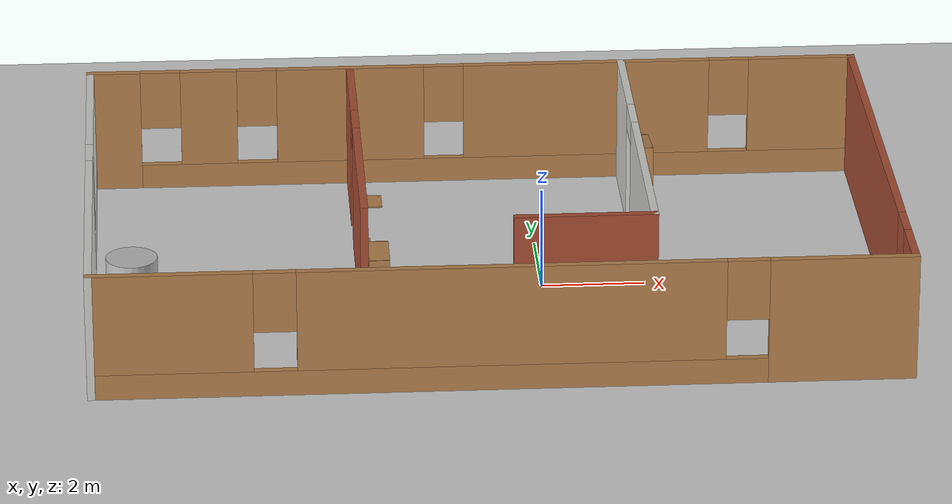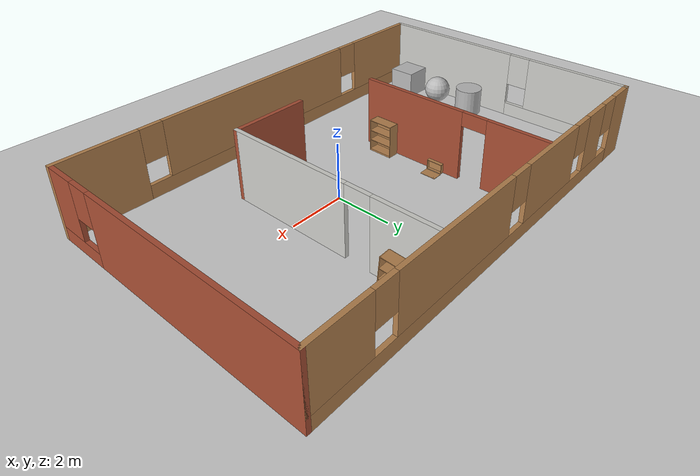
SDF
<sdf version="1.6">
 <world name="default">
  <light name="sun" type="directional">
   <pose>0 0 10 0 -0 0</pose>
   <diffuse>0.8 0.8 0.8 1</diffuse>
   <specular>0.1 0.1 0.1 1</specular>
   <attenuation>
    <range>1000</range>
    <constant>0.9</constant>
    <linear>0.01</linear>
    <quadratic>0.001</quadratic>
   </attenuation>
   <direction>-0.5 0.5 -1</direction>
  </light>
  <model name="ground_plane">
   <static>1</static>
   <link name="link">
    <collision name="collision">
     <geometry><plane><normal>0 0 1</normal><size>100 100</size></plane></geometry>
     <surface><friction><ode><mu>100</mu><mu2>50</mu2></ode></friction></surface>
    </collision>
    <visual name="visual">
     <cast_shadows>0</cast_shadows>
     <geometry><plane><normal>0 0 1</normal><size>100 100</size></plane></geometry>
     <material>
      <script><uri>file://media/materials/scripts/gazebo.material</uri><name>Gazebo/Grey</name></script>
     </material>
    </visual>
   </link>
  </model>
  <gravity>0 0 -9.8</gravity>
  <magnetic_field>6e-06 2.3e-05 -4.2e-05</magnetic_field>
  <atmosphere type="adiabatic"/>
  <physics name="default_physics" default="0" type="ode">
   <max_step_size>0.001</max_step_size>
   <real_time_factor>1</real_time_factor>
   <real_time_update_rate>1000</real_time_update_rate>
  </physics>
  <scene><ambient>0.4 0.4 0.4 1</ambient><background>0.7 0.7 0.7 1</background><shadows>1</shadows></scene>
  <spherical_coordinates>
   <surface_model>EARTH_WGS84</surface_model>
   <latitude_deg>0</latitude_deg>
   <longitude_deg>0</longitude_deg>
   <elevation>0</elevation>
   <heading_deg>0</heading_deg>
  </spherical_coordinates>
  <model name="Building5">
   <pose>-1.04167 0.393768 0 0 -0 0</pose>
   <link name="Wall_0">
    <pose>-7.675 0 0 0 -0 1.5708</pose>
    <visual name="Wall_0_Visual_0">
     <pose>-2.26473 0 1.25 0 -0 0</pose>
     <geometry><box><size>5.47055 0.15 2.5</size></box></geometry>
     <material>
      <script><uri>file://media/materials/scripts/gazebo.material</uri><name>Gazebo/CeilingTiled</name></script>
      <ambient>1 1 1 1</ambient>
     </material>
    </visual>
    <collision name="Wall_0_Collision_0">
     <geometry><box><size>5.47055 0.15 2.5</size></box></geometry>
     <pose>-2.26473 0 1.25 0 -0 0</pose>
    </collision>
    <visual name="Wall_0_Visual_1">
     <pose>2.73527 0 0.25 0 -0 0</pose>
     <geometry><box><size>4.52945 0.15 0.5</size></box></geometry>
     <material>
      <script><uri>file://media/materials/scripts/gazebo.material</uri><name>Gazebo/CeilingTiled</name></script>
      <ambient>1 1 1 1</ambient>
     </material>
    </visual>
    <collision name="Wall_0_Collision_1">
     <geometry><box><size>4.52945 0.15 0.5</size></box></geometry>
     <pose>2.73527 0 0.25 0 -0 0</pose>
    </collision>
    <visual name="Wall_0_Visual_2">
     <pose>3.13527 0 1.5 0 -0 0</pose>
     <geometry><box><size>3.72945 0.15 2</size></box></geometry>
     <material>
      <script><uri>file://media/materials/scripts/gazebo.material</uri><name>Gazebo/CeilingTiled</name></script>
      <ambient>1 1 1 1</ambient>
     </material>
    </visual>
    <collision name="Wall_0_Collision_2">
     <geometry><box><size>3.72945 0.15 2</size></box></geometry>
     <pose>3.13527 0 1.5 0 -0 0</pose>
    </collision>
    <visual name="Wall_0_Visual_3">
     <pose>0.870547 0 1.9 0 -0 0</pose>
     <geometry><box><size>0.8 0.15 1.2</size></box></geometry>
     <material>
      <script><uri>file://media/materials/scripts/gazebo.material</uri><name>Gazebo/CeilingTiled</name></script>
      <ambient>1 1 1 1</ambient>
     </material>
    </visual>
    <collision name="Wall_0_Collision_3">
     <geometry><box><size>0.8 0.15 1.2</size></box></geometry>
     <pose>0.870547 0 1.9 0 -0 0</pose>
    </collision>
   </link>
   <link name="Wall_1">
    <pose>0 4.925 0 0 -0 0</pose>
    <visual name="Wall_1_Visual_0">
     <pose>-7.21431 0 1.25 0 -0 0</pose>
     <geometry><box><size>1.07139 0.15 2.5</size></box></geometry>
     <material>
      <script><uri>file://media/materials/scripts/gazebo.material</uri><name>Gazebo/Wood</name></script>
      <ambient>1 1 1 1</ambient>
     </material>
    </visual>
    <collision name="Wall_1_Collision_0">
     <geometry><box><size>1.07139 0.15 2.5</size></box></geometry>
     <pose>-7.21431 0 1.25 0 -0 0</pose>
    </collision>
    <visual name="Wall_1_Visual_1">
     <pose>0.535694 0 0.25 0 -0 0</pose>
     <geometry><box><size>14.4286 0.15 0.5</size></box></geometry>
     <material>
      <script><uri>file://media/materials/scripts/gazebo.material</uri><name>Gazebo/Wood</name></script>
      <ambient>1 1 1 1</ambient>
     </material>
    </visual>
    <collision name="Wall_1_Collision_1">
     <geometry><box><size>14.4286 0.15 0.5</size></box></geometry>
     <pose>0.535694 0 0.25 0 -0 0</pose>
    </collision>
    <visual name="Wall_1_Visual_2">
     <pose>-5.3112 0 1.5 0 -0 0</pose>
     <geometry><box><size>1.13483 0.15 2</size></box></geometry>
     <material>
      <script><uri>file://media/materials/scripts/gazebo.material</uri><name>Gazebo/Wood</name></script>
      <ambient>1 1 1 1</ambient>
     </material>
    </visual>
    <collision name="Wall_1_Collision_2">
     <geometry><box><size>1.13483 0.15 2</size></box></geometry>
     <pose>-5.3112 0 1.5 0 -0 0</pose>
    </collision>
    <visual name="Wall_1_Visual_3">
     <pose>-2.46172 0 1.5 0 -0 0</pose>
     <geometry><box><size>2.96413 0.15 2</size></box></geometry>
     <material>
      <script><uri>file://media/materials/scripts/gazebo.material</uri><name>Gazebo/Wood</name></script>
      <ambient>1 1 1 1</ambient>
     </material>
    </visual>
    <collision name="Wall_1_Collision_3">
     <geometry><box><size>2.96413 0.15 2</size></box></geometry>
     <pose>-2.46172 0 1.5 0 -0 0</pose>
    </collision>
    <visual name="Wall_1_Visual_4">
     <pose>2.30501 0 1.5 0 -0 0</pose>
     <geometry><box><size>4.96932 0.15 2</size></box></geometry>
     <material>
      <script><uri>file://media/materials/scripts/gazebo.material</uri><name>Gazebo/Wood</name></script>
      <ambient>1 1 1 1</ambient>
     </material>
    </visual>
    <collision name="Wall_1_Collision_4">
     <geometry><box><size>4.96932 0.15 2</size></box></geometry>
     <pose>2.30501 0 1.5 0 -0 0</pose>
    </collision>
    <visual name="Wall_1_Visual_5">
     <pose>6.66983 0 1.5 0 -0 0</pose>
     <geometry><box><size>2.16033 0.15 2</size></box></geometry>
     <material>
      <script><uri>file://media/materials/scripts/gazebo.material</uri><name>Gazebo/Wood</name></script>
      <ambient>1 1 1 1</ambient>
     </material>
    </visual>
    <collision name="Wall_1_Collision_5">
     <geometry><box><size>2.16033 0.15 2</size></box></geometry>
     <pose>6.66983 0 1.5 0 -0 0</pose>
    </collision>
    <visual name="Wall_1_Visual_6">
     <pose>-6.27861 0 1.9 0 -0 0</pose>
     <geometry><box><size>0.8 0.15 1.2</size></box></geometry>
     <material>
      <script><uri>file://media/materials/scripts/gazebo.material</uri><name>Gazebo/Wood</name></script>
      <ambient>1 1 1 1</ambient>
     </material>
    </visual>
    <collision name="Wall_1_Collision_6">
     <geometry><box><size>0.8 0.15 1.2</size></box></geometry>
     <pose>-6.27861 0 1.9 0 -0 0</pose>
    </collision>
    <visual name="Wall_1_Visual_7">
     <pose>-4.34378 0 1.9 0 -0 0</pose>
     <geometry><box><size>0.8 0.15 1.2</size></box></geometry>
     <material>
      <script><uri>file://media/materials/scripts/gazebo.material</uri><name>Gazebo/Wood</name></script>
      <ambient>1 1 1 1</ambient>
     </material>
    </visual>
    <collision name="Wall_1_Collision_7">
     <geometry><box><size>0.8 0.15 1.2</size></box></geometry>
     <pose>-4.34378 0 1.9 0 -0 0</pose>
    </collision>
    <visual name="Wall_1_Visual_8">
     <pose>-0.579652 0 1.9 0 -0 0</pose>
     <geometry><box><size>0.8 0.15 1.2</size></box></geometry>
     <material>
      <script><uri>file://media/materials/scripts/gazebo.material</uri><name>Gazebo/Wood</name></script>
      <ambient>1 1 1 1</ambient>
     </material>
    </visual>
    <collision name="Wall_1_Collision_8">
     <geometry><box><size>0.8 0.15 1.2</size></box></geometry>
     <pose>-0.579652 0 1.9 0 -0 0</pose>
    </collision>
    <visual name="Wall_1_Visual_9">
     <pose>5.18966 0 1.9 0 -0 0</pose>
     <geometry><box><size>0.8 0.15 1.2</size></box></geometry>
     <material>
      <script><uri>file://media/materials/scripts/gazebo.material</uri><name>Gazebo/Wood</name></script>
      <ambient>1 1 1 1</ambient>
     </material>
    </visual>
    <collision name="Wall_1_Collision_9">
     <geometry><box><size>0.8 0.15 1.2</size></box></geometry>
     <pose>5.18966 0 1.9 0 -0 0</pose>
    </collision>
   </link>
   <link name="Wall_2">
    <pose>7.675 0 0 0 0 -1.5708</pose>
    <visual name="Wall_2_Visual_0">
     <pose>-1.02455 0 1.25 0 -0 0</pose>
     <geometry><box><size>7.9509 0.15 2.5</size></box></geometry>
     <material>
      <script><uri>file://media/materials/scripts/gazebo.material</uri><name>Gazebo/Bricks</name></script>
      <ambient>1 1 1 1</ambient>
     </material>
    </visual>
    <collision name="Wall_2_Collision_0">
     <geometry><box><size>7.9509 0.15 2.5</size></box></geometry>
     <pose>-1.02455 0 1.25 0 -0 0</pose>
    </collision>
    <visual name="Wall_2_Visual_1">
     <pose>3.97545 0 0.25 0 -0 0</pose>
     <geometry><box><size>2.0491 0.15 0.5</size></box></geometry>
     <material>
      <script><uri>file://media/materials/scripts/gazebo.material</uri><name>Gazebo/Bricks</name></script>
      <ambient>1 1 1 1</ambient>
     </material>
    </visual>
    <collision name="Wall_2_Collision_1">
     <geometry><box><size>2.0491 0.15 0.5</size></box></geometry>
     <pose>3.97545 0 0.25 0 -0 0</pose>
    </collision>
    <visual name="Wall_2_Visual_2">
     <pose>4.37545 0 1.5 0 -0 0</pose>
     <geometry><box><size>1.2491 0.15 2</size></box></geometry>
     <material>
      <script><uri>file://media/materials/scripts/gazebo.material</uri><name>Gazebo/Bricks</name></script>
      <ambient>1 1 1 1</ambient>
     </material>
    </visual>
    <collision name="Wall_2_Collision_2">
     <geometry><box><size>1.2491 0.15 2</size></box></geometry>
     <pose>4.37545 0 1.5 0 -0 0</pose>
    </collision>
    <visual name="Wall_2_Visual_3">
     <pose>3.3509 0 1.9 0 -0 0</pose>
     <geometry><box><size>0.8 0.15 1.2</size></box></geometry>
     <material>
      <script><uri>file://media/materials/scripts/gazebo.material</uri><name>Gazebo/Bricks</name></script>
      <ambient>1 1 1 1</ambient>
     </material>
    </visual>
    <collision name="Wall_2_Collision_3">
     <geometry><box><size>0.8 0.15 1.2</size></box></geometry>
     <pose>3.3509 0 1.9 0 -0 0</pose>
    </collision>
   </link>
   <link name="Wall_3">
    <pose>0 -4.925 0 0 -0 3.14159</pose>
    <visual name="Wall_3_Visual_0">
     <pose>-6.35322 0 1.25 0 -0 0</pose>
     <geometry><box><size>2.79355 0.15 2.5</size></box></geometry>
     <material>
      <script><uri>file://media/materials/scripts/gazebo.material</uri><name>Gazebo/Wood</name></script>
      <ambient>1 1 1 1</ambient>
     </material>
    </visual>
    <collision name="Wall_3_Collision_0">
     <geometry><box><size>2.79355 0.15 2.5</size></box></geometry>
     <pose>-6.35322 0 1.25 0 -0 0</pose>
    </collision>
    <visual name="Wall_3_Visual_1">
     <pose>1.39678 0 0.25 0 -0 0</pose>
     <geometry><box><size>12.7064 0.15 0.5</size></box></geometry>
     <material>
      <script><uri>file://media/materials/scripts/gazebo.material</uri><name>Gazebo/Wood</name></script>
      <ambient>1 1 1 1</ambient>
     </material>
    </visual>
    <collision name="Wall_3_Collision_1">
     <geometry><box><size>12.7064 0.15 0.5</size></box></geometry>
     <pose>1.39678 0 0.25 0 -0 0</pose>
    </collision>
    <visual name="Wall_3_Visual_2">
     <pose>-0.159102 0 1.5 0 -0 0</pose>
     <geometry><box><size>7.99469 0.15 2</size></box></geometry>
     <material>
      <script><uri>file://media/materials/scripts/gazebo.material</uri><name>Gazebo/Wood</name></script>
      <ambient>1 1 1 1</ambient>
     </material>
    </visual>
    <collision name="Wall_3_Collision_2">
     <geometry><box><size>7.99469 0.15 2</size></box></geometry>
     <pose>-0.159102 0 1.5 0 -0 0</pose>
    </collision>
    <visual name="Wall_3_Visual_3">
     <pose>6.19412 0 1.5 0 -0 0</pose>
     <geometry><box><size>3.11176 0.15 2</size></box></geometry>
     <material>
      <script><uri>file://media/materials/scripts/gazebo.material</uri><name>Gazebo/Wood</name></script>
      <ambient>1 1 1 1</ambient>
     </material>
    </visual>
    <collision name="Wall_3_Collision_3">
     <geometry><box><size>3.11176 0.15 2</size></box></geometry>
     <pose>6.19412 0 1.5 0 -0 0</pose>
    </collision>
    <visual name="Wall_3_Visual_4">
     <pose>-4.55645 0 1.9 0 -0 0</pose>
     <geometry><box><size>0.8 0.15 1.2</size></box></geometry>
     <material>
      <script><uri>file://media/materials/scripts/gazebo.material</uri><name>Gazebo/Wood</name></script>
      <ambient>1 1 1 1</ambient>
     </material>
    </visual>
    <collision name="Wall_3_Collision_4">
     <geometry><box><size>0.8 0.15 1.2</size></box></geometry>
     <pose>-4.55645 0 1.9 0 -0 0</pose>
    </collision>
    <visual name="Wall_3_Visual_5">
     <pose>4.23824 0 1.9 0 -0 0</pose>
     <geometry><box><size>0.8 0.15 1.2</size></box></geometry>
     <material>
      <script><uri>file://media/materials/scripts/gazebo.material</uri><name>Gazebo/Wood</name></script>
      <ambient>1 1 1 1</ambient>
     </material>
    </visual>
    <collision name="Wall_3_Collision_5">
     <geometry><box><size>0.8 0.15 1.2</size></box></geometry>
     <pose>4.23824 0 1.9 0 -0 0</pose>
    </collision>
   </link>
   <link name="Wall_5">
    <pose>-2.46536 1.37123 0 0 -0 1.5708</pose>
    <visual name="Wall_5_Visual_0">
     <pose>-1.53936 0 1.25 0 -0 0</pose>
     <geometry><box><size>3.92129 0.15 2.5</size></box></geometry>
     <material>
      <script><uri>file://media/materials/scripts/gazebo.material</uri><name>Gazebo/Bricks</name></script>
      <ambient>1 1 1 1</ambient>
     </material>
    </visual>
    <collision name="Wall_5_Collision_0">
     <geometry><box><size>3.92129 0.15 2.5</size></box></geometry>
     <pose>-1.53936 0 1.25 0 -0 0</pose>
    </collision>
    <visual name="Wall_5_Visual_1">
     <pose>2.41064 0 1.25 0 -0 0</pose>
     <geometry><box><size>2.17871 0.15 2.5</size></box></geometry>
     <material>
      <script><uri>file://media/materials/scripts/gazebo.material</uri><name>Gazebo/Bricks</name></script>
      <ambient>1 1 1 1</ambient>
     </material>
    </visual>
    <collision name="Wall_5_Collision_1">
     <geometry><box><size>2.17871 0.15 2.5</size></box></geometry>
     <pose>2.41064 0 1.25 0 -0 0</pose>
    </collision>
    <visual name="Wall_5_Visual_2">
     <pose>0.871288 0 2.25 0 -0 0</pose>
     <geometry><box><size>0.9 0.15 0.5</size></box></geometry>
     <material>
      <script><uri>file://media/materials/scripts/gazebo.material</uri><name>Gazebo/Bricks</name></script>
      <ambient>1 1 1 1</ambient>
     </material>
    </visual>
    <collision name="Wall_5_Collision_2">
     <geometry><box><size>0.9 0.15 0.5</size></box></geometry>
     <pose>0.871288 0 2.25 0 -0 0</pose>
    </collision>
   </link>
   <link name="Wall_7">
    <pose>3.00858 1.1161 0 0 0 -1.5708</pose>
    <visual name="Wall_7_Visual_0">
     <pose>-2.70812 0 1.25 0 -0 0</pose>
     <geometry><box><size>2.33377 0.15 2.5</size></box></geometry>
     <material>
      <script><uri>file://media/materials/scripts/gazebo.material</uri><name>Gazebo/CeilingTiled</name></script>
      <ambient>1 1 1 1</ambient>
     </material>
    </visual>
    <collision name="Wall_7_Collision_0">
     <geometry><box><size>2.33377 0.15 2.5</size></box></geometry>
     <pose>-2.70812 0 1.25 0 -0 0</pose>
    </collision>
    <visual name="Wall_7_Visual_1">
     <pose>1.61688 0 1.25 0 -0 0</pose>
     <geometry><box><size>4.51623 0.15 2.5</size></box></geometry>
     <material>
      <script><uri>file://media/materials/scripts/gazebo.material</uri><name>Gazebo/CeilingTiled</name></script>
      <ambient>1 1 1 1</ambient>
     </material>
    </visual>
    <collision name="Wall_7_Collision_1">
     <geometry><box><size>4.51623 0.15 2.5</size></box></geometry>
     <pose>1.61688 0 1.25 0 -0 0</pose>
    </collision>
    <visual name="Wall_7_Visual_2">
     <pose>-1.09123 0 2.25 0 -0 0</pose>
     <geometry><box><size>0.9 0.15 0.5</size></box></geometry>
     <material>
      <script><uri>file://media/materials/scripts/gazebo.material</uri><name>Gazebo/CeilingTiled</name></script>
      <ambient>1 1 1 1</ambient>
     </material>
    </visual>
    <collision name="Wall_7_Collision_2">
     <geometry><box><size>0.9 0.15 0.5</size></box></geometry>
     <pose>-1.09123 0 2.25 0 -0 0</pose>
    </collision>
   </link>
   <link name="Wall_8">
    <collision name="Wall_8_Collision">
     <geometry><box><size>2.75 0.15 2.5</size></box></geometry>
     <pose>0 0 1.25 0 -0 0</pose>
    </collision>
    <visual name="Wall_8_Visual">
     <pose>0 0 1.25 0 -0 0</pose>
     <geometry><box><size>2.75 0.15 2.5</size></box></geometry>
     <material>
      <script><uri>file://media/materials/scripts/gazebo.material</uri><name>Gazebo/Bricks</name></script>
      <ambient>1 1 1 1</ambient>
     </material>
    </visual>
    <pose>1.70858 -2.6839 0 0 -0 3.14159</pose>
   </link>
   <static>1</static>
  </model>
  <model name="textured_shapes">
   <pose>-7.93735 -1.89755 0.5 0 -0 0</pose>
   <link name="box">
    <pose>0 -1.5 0 0 -0 0</pose>
    <collision name="collision"><geometry><box><size>1 1 1</size></box></geometry></collision>
    <visual name="visual">
     <geometry><box><size>1 1 1</size></box></geometry>
     <material>
      <script>
       <uri>model://textured_shapes/materials/scripts</uri>
       <uri>model://textured_shapes/materials/textures</uri>
       <name>TexturedShape/Squares</name>
      </script>
     </material>
    </visual>
    <inertial>
     <inertia><ixx>1</ixx><ixy>0</ixy><ixz>0</ixz><iyy>1</iyy><iyz>0</iyz><izz>1</izz></inertia>
     <mass>1</mass>
    </inertial>
   </link>
   <link name="sphere">
    <collision name="collision"><geometry><sphere><radius>0.5</radius></sphere></geometry></collision>
    <visual name="visual">
     <geometry><sphere><radius>0.5</radius></sphere></geometry>
     <material>
      <script>
       <uri>model://textured_shapes/materials/scripts</uri>
       <uri>model://textured_shapes/materials/textures</uri>
       <name>TexturedShape/Squares</name>
      </script>
     </material>
    </visual>
    <inertial>
     <inertia><ixx>1</ixx><ixy>0</ixy><ixz>0</ixz><iyy>1</iyy><iyz>0</iyz><izz>1</izz></inertia>
     <mass>1</mass>
    </inertial>
   </link>
   <link name="cylinder">
    <pose>0 1.5 0 0 -0 0</pose>
    <collision name="collision">
     <geometry><cylinder><radius>0.5</radius><length>1</length></cylinder></geometry>
    </collision>
    <visual name="visual">
     <geometry><cylinder><radius>0.5</radius><length>1</length></cylinder></geometry>
     <material>
      <script>
       <uri>model://textured_shapes/materials/scripts</uri>
       <uri>model://textured_shapes/materials/textures</uri>
       <name>TexturedShape/Squares</name>
      </script>
     </material>
    </visual>
    <inertial>
     <inertia><ixx>1</ixx><ixy>0</ixy><ixz>0</ixz><iyy>1</iyy><iyz>0</iyz><izz>1</izz></inertia>
     <mass>1</mass>
    </inertial>
   </link>
  </model>
  <model name="wooden_case">
   <link name="base">
    <pose>0 0 0.024 0 -0 0</pose>
    <inertial>
     <pose>-0.022184 0 0.171592 0 -0 0</pose>
     <mass>3.96264</mass>
     <inertia>
      <ixx>0.213536</ixx>
      <ixy>0</ixy>
      <ixz>0.000779377</ixz>
      <iyy>0.0708943</iyy>
      <iyz>0</iyz>
      <izz>0.154604</izz>
     </inertia>
    </inertial>
    <collision name="collision_back">
     <pose>-0.053975 0 0.1778 0 -0 0</pose>
     <geometry><box><size>0.01905 0.5461 0.3175</size></box></geometry>
     <surface>
      <contact>
       <poissons_ratio>0.347</poissons_ratio>
       <elastic_modulus>8.8e+09</elastic_modulus>
       <ode><kp>100000</kp><kd>100</kd><max_vel>100</max_vel><min_depth>0.001</min_depth></ode>
      </contact>
      <friction>
       <torsional>
        <coefficient>1</coefficient>
        <use_patch_radius>0</use_patch_radius>
        <surface_radius>0.01</surface_radius>
       </torsional>
      </friction>
     </surface>
    </collision>
    <visual name="visual_back">
     <pose>-0.053975 0 0.1778 0 -0 0</pose>
     <geometry><box><size>0.01905 0.5461 0.3175</size></box></geometry>
     <material>
      <script><uri>file://media/materials/scripts/gazebo.material</uri><name>Gazebo/Wood</name></script>
     </material>
    </visual>
    <collision name="collision_bottom">
     <pose>0 0 0.009525 0 -0 0</pose>
     <geometry><box><size>0.127 0.5842 0.01905</size></box></geometry>
     <surface>
      <contact>
       <poissons_ratio>0.347</poissons_ratio>
       <elastic_modulus>8.8e+09</elastic_modulus>
       <ode><kp>100000</kp><kd>100</kd><max_vel>100</max_vel><min_depth>0.001</min_depth></ode>
      </contact>
      <friction>
       <torsional>
        <coefficient>1</coefficient>
        <use_patch_radius>0</use_patch_radius>
        <surface_radius>0.01</surface_radius>
       </torsional>
      </friction>
     </surface>
    </collision>
    <visual name="visual_bottom">
     <pose>0 0 0.009525 0 -0 0</pose>
     <geometry><box><size>0.127 0.5842 0.01905</size></box></geometry>
     <material>
      <script><uri>file://media/materials/scripts/gazebo.material</uri><name>Gazebo/Wood</name></script>
     </material>
    </visual>
    <collision name="collision_top">
     <pose>0 0 0.346075 0 -0 0</pose>
     <geometry><box><size>0.127 0.5842 0.01905</size></box></geometry>
     <surface>
      <contact>
       <poissons_ratio>0.347</poissons_ratio>
       <elastic_modulus>8.8e+09</elastic_modulus>
       <ode><kp>100000</kp><kd>100</kd><max_vel>100</max_vel><min_depth>0.001</min_depth></ode>
      </contact>
      <friction>
       <torsional>
        <coefficient>1</coefficient>
        <use_patch_radius>0</use_patch_radius>
        <surface_radius>0.01</surface_radius>
       </torsional>
      </friction>
     </surface>
    </collision>
    <visual name="visual_top">
     <pose>0 0 0.346075 0 -0 0</pose>
     <geometry><box><size>0.127 0.5842 0.01905</size></box></geometry>
     <material>
      <script><uri>file://media/materials/scripts/gazebo.material</uri><name>Gazebo/Wood</name></script>
     </material>
    </visual>
    <collision name="collision_left">
     <pose>0 -0.282575 0.1778 0 -0 0</pose>
     <geometry><box><size>0.127 0.01905 0.3175</size></box></geometry>
     <surface>
      <contact>
       <poissons_ratio>0.347</poissons_ratio>
       <elastic_modulus>8.8e+09</elastic_modulus>
       <ode><kp>100000</kp><kd>100</kd><max_vel>100</max_vel><min_depth>0.001</min_depth></ode>
      </contact>
      <friction>
       <torsional>
        <coefficient>1</coefficient>
        <use_patch_radius>0</use_patch_radius>
        <surface_radius>0.01</surface_radius>
       </torsional>
      </friction>
     </surface>
    </collision>
    <visual name="visual_left">
     <pose>0 -0.282575 0.1778 0 -0 0</pose>
     <geometry><box><size>0.127 0.01905 0.3175</size></box></geometry>
     <material>
      <script><uri>file://media/materials/scripts/gazebo.material</uri><name>Gazebo/Wood</name></script>
     </material>
    </visual>
    <collision name="collision_right">
     <pose>0 0.282575 0.1778 0 -0 0</pose>
     <geometry><box><size>0.127 0.01905 0.3175</size></box></geometry>
     <surface>
      <contact>
       <poissons_ratio>0.347</poissons_ratio>
       <elastic_modulus>8.8e+09</elastic_modulus>
       <ode><kp>100000</kp><kd>100</kd><max_vel>100</max_vel><min_depth>0.001</min_depth></ode>
      </contact>
      <friction>
       <torsional>
        <coefficient>1</coefficient>
        <use_patch_radius>0</use_patch_radius>
        <surface_radius>0.01</surface_radius>
       </torsional>
      </friction>
     </surface>
    </collision>
    <visual name="visual_right">
     <pose>0 0.282575 0.1778 0 -0 0</pose>
     <geometry><box><size>0.127 0.01905 0.3175</size></box></geometry>
     <material>
      <script><uri>file://media/materials/scripts/gazebo.material</uri><name>Gazebo/Wood</name></script>
     </material>
    </visual>
    <collision name="collision_block_left">
     <pose>0.0095 -0.2151 -0.012 0 -0 0</pose>
     <geometry><box><size>0.108 0.05 0.024</size></box></geometry>
     <surface>
      <contact>
       <poissons_ratio>0.347</poissons_ratio>
       <elastic_modulus>8.8e+09</elastic_modulus>
       <ode><kp>100000</kp><kd>100</kd><max_vel>100</max_vel><min_depth>0.001</min_depth></ode>
      </contact>
      <friction>
       <torsional>
        <coefficient>1</coefficient>
        <use_patch_radius>0</use_patch_radius>
        <surface_radius>0.01</surface_radius>
       </torsional>
      </friction>
     </surface>
    </collision>
    <visual name="visual_block_left">
     <pose>0.0095 -0.2151 -0.012 0 -0 0</pose>
     <geometry><box><size>0.108 0.05 0.024</size></box></geometry>
     <material>
      <script><uri>file://media/materials/scripts/gazebo.material</uri><name>Gazebo/Wood</name></script>
     </material>
    </visual>
    <collision name="collision_block_right">
     <pose>0.0095 0.2151 -0.012 0 -0 0</pose>
     <geometry><box><size>0.108 0.05 0.024</size></box></geometry>
     <surface>
      <contact>
       <poissons_ratio>0.347</poissons_ratio>
       <elastic_modulus>8.8e+09</elastic_modulus>
       <ode><kp>100000</kp><kd>100</kd><max_vel>100</max_vel><min_depth>0.001</min_depth></ode>
      </contact>
      <friction>
       <torsional>
        <coefficient>1</coefficient>
        <use_patch_radius>0</use_patch_radius>
        <surface_radius>0.01</surface_radius>
       </torsional>
      </friction>
     </surface>
    </collision>
    <visual name="visual_block_right">
     <pose>0.0095 0.2151 -0.012 0 -0 0</pose>
     <geometry><box><size>0.108 0.05 0.024</size></box></geometry>
     <material>
      <script><uri>file://media/materials/scripts/gazebo.material</uri><name>Gazebo/Wood</name></script>
     </material>
    </visual>
   </link>
   <link name="lid">
    <pose>0.243775 0 0.009525 0 -0 0</pose>
    <inertial>
     <mass>1.97874</mass>
     <inertia>
      <ixx>0.0563367</ixx>
      <ixy>0</ixy>
      <ixz>0</ixz>
      <iyy>0.020911</iyy>
      <iyz>0</iyz>
      <izz>0.0771281</izz>
     </inertia>
    </inertial>
    <collision name="collision">
     <geometry><box><size>0.3556 0.5842 0.01905</size></box></geometry>
     <surface>
      <contact>
       <poissons_ratio>0.347</poissons_ratio>
       <elastic_modulus>8.8e+09</elastic_modulus>
       <ode><kp>100000</kp><kd>100</kd><max_vel>100</max_vel><min_depth>0.001</min_depth></ode>
      </contact>
      <friction>
       <torsional>
        <coefficient>1</coefficient>
        <use_patch_radius>0</use_patch_radius>
        <surface_radius>0.01</surface_radius>
       </torsional>
      </friction>
     </surface>
    </collision>
    <visual name="visual">
     <geometry><box><size>0.3556 0.5842 0.01905</size></box></geometry>
     <material>
      <script><uri>file://media/materials/scripts/gazebo.material</uri><name>Gazebo/Wood</name></script>
     </material>
    </visual>
    <visual name="tee_nut_1">
     <pose>0.122 -0.216 0 0 -0 0</pose>
     <geometry><cylinder><radius>0.00635</radius><length>0.0192405</length></cylinder></geometry>
     <material>
      <script><uri>file://media/materials/scripts/gazebo.material</uri><name>Gazebo/Grey</name></script>
     </material>
    </visual>
    <visual name="tee_nut_2">
     <pose>0.122 -0.088 0 0 -0 0</pose>
     <geometry><cylinder><radius>0.00635</radius><length>0.0192405</length></cylinder></geometry>
     <material>
      <script><uri>file://media/materials/scripts/gazebo.material</uri><name>Gazebo/Grey</name></script>
     </material>
    </visual>
    <visual name="tee_nut_3">
     <pose>0.122 0.088 0 0 -0 0</pose>
     <geometry><cylinder><radius>0.00635</radius><length>0.0192405</length></cylinder></geometry>
     <material>
      <script><uri>file://media/materials/scripts/gazebo.material</uri><name>Gazebo/Grey</name></script>
     </material>
    </visual>
    <visual name="tee_nut_4">
     <pose>0.122 0.216 0 0 -0 0</pose>
     <geometry><cylinder><radius>0.00635</radius><length>0.0192405</length></cylinder></geometry>
     <material>
      <script><uri>file://media/materials/scripts/gazebo.material</uri><name>Gazebo/Grey</name></script>
     </material>
    </visual>
   </link>
   <joint name="lid_hinge" type="revolute">
    <pose>-0.1778 0 0.01905 0 -0 0</pose>
    <parent>base</parent>
    <child>lid</child>
    <axis>
     <xyz>0 1 0</xyz>
     <limit><upper>0.523599</upper><lower>-1.5708</lower></limit>
     <use_parent_model_frame>0</use_parent_model_frame>
     <dynamics><spring_reference>0</spring_reference><spring_stiffness>0</spring_stiffness></dynamics>
    </axis>
   </joint>
   <pose>-3.33027 1.34128 -0.001057 0 -0.000428 -1e-06</pose>
  </model>
  <model name="bookshelf">
   <static>1</static>
   <link name="link">
    <inertial><mass>1</mass></inertial>
    <collision name="back">
     <pose>0 0.005 0.6 0 -0 0</pose>
     <geometry><box><size>0.9 0.01 1.2</size></box></geometry>
    </collision>
    <visual name="visual1">
     <pose>0 0.005 0.6 0 -0 0</pose>
     <geometry><box><size>0.9 0.01 1.2</size></box></geometry>
     <material>
      <script><uri>file://media/materials/scripts/gazebo.material</uri><name>Gazebo/Wood</name></script>
     </material>
    </visual>
    <collision name="left_side">
     <pose>0.45 -0.195 0.6 0 -0 0</pose>
     <geometry><box><size>0.02 0.4 1.2</size></box></geometry>
    </collision>
    <visual name="visual2">
     <pose>0.45 -0.195 0.6 0 -0 0</pose>
     <geometry><box><size>0.02 0.4 1.2</size></box></geometry>
     <material>
      <script><uri>file://media/materials/scripts/gazebo.material</uri><name>Gazebo/Wood</name></script>
     </material>
    </visual>
    <collision name="right_side">
     <pose>-0.45 -0.195 0.6 0 -0 0</pose>
     <geometry><box><size>0.02 0.4 1.2</size></box></geometry>
    </collision>
    <visual name="visual3">
     <pose>-0.45 -0.195 0.6 0 -0 0</pose>
     <geometry><box><size>0.02 0.4 1.2</size></box></geometry>
     <material>
      <script><uri>file://media/materials/scripts/gazebo.material</uri><name>Gazebo/Wood</name></script>
     </material>
    </visual>
    <collision name="bottom">
     <pose>0 -0.195 0.03 0 -0 0</pose>
     <geometry><box><size>0.88 0.4 0.06</size></box></geometry>
    </collision>
    <visual name="visual4">
     <pose>0 -0.195 0.03 0 -0 0</pose>
     <geometry><box><size>0.88 0.4 0.06</size></box></geometry>
     <material>
      <script><uri>file://media/materials/scripts/gazebo.material</uri><name>Gazebo/Wood</name></script>
     </material>
    </visual>
    <collision name="top">
     <pose>0 -0.195 1.19 0 -0 0</pose>
     <geometry><box><size>0.88 0.4 0.02</size></box></geometry>
    </collision>
    <visual name="visual5">
     <pose>0 -0.195 1.19 0 -0 0</pose>
     <geometry><box><size>0.88 0.4 0.02</size></box></geometry>
     <material>
      <script><uri>file://media/materials/scripts/gazebo.material</uri><name>Gazebo/Wood</name></script>
     </material>
    </visual>
    <collision name="low_shelf">
     <pose>0 -0.195 0.43 0 -0 0</pose>
     <geometry><box><size>0.88 0.4 0.02</size></box></geometry>
    </collision>
    <visual name="visual6">
     <pose>0 -0.195 0.43 0 -0 0</pose>
     <geometry><box><size>0.88 0.4 0.02</size></box></geometry>
     <material>
      <script><uri>file://media/materials/scripts/gazebo.material</uri><name>Gazebo/Wood</name></script>
     </material>
    </visual>
    <collision name="high_shelf">
     <pose>0 -0.195 0.8 0 -0 0</pose>
     <geometry><box><size>0.88 0.4 0.02</size></box></geometry>
    </collision>
    <visual name="visual7">
     <pose>0 -0.195 0.8 0 -0 0</pose>
     <geometry><box><size>0.88 0.4 0.02</size></box></geometry>
     <material>
      <script><uri>file://media/materials/scripts/gazebo.material</uri><name>Gazebo/Wood</name></script>
     </material>
    </visual>
   </link>
   <pose>2.09377 4.11657 -0.002667 0.003159 0.092659 1.60493</pose>
  </model>
  <model name="cabinet">
   <static>1</static>
   <link name="cabinet_bottom_plate">
    <inertial>
     <pose>0 0 -1 0 -0 0</pose>
     <inertia><ixx>2.05</ixx><ixy>0</ixy><ixz>0</ixz><iyy>2.05</iyy><iyz>0</iyz><izz>2.05</izz></inertia>
     <mass>25</mass>
    </inertial>
    <collision name="cabinet_bottom_plate_geom">
     <pose>0 0 0.01 0 -0 0</pose>
     <geometry><box><size>0.45 0.45 0.02</size></box></geometry>
    </collision>
    <visual name="cabinet_bottom_plate_geom_visual">
     <pose>0 0 0.01 0 -0 0</pose>
     <geometry><box><size>0.45 0.45 0.02</size></box></geometry>
     <material>
      <script><uri>file://media/materials/scripts/gazebo.material</uri><name>Gazebo/Wood</name></script>
     </material>
    </visual>
    <collision name="cabinet_bottom_plate_geom_cabinet_back_plate">
     <pose>0.235 0 0.51 0 -0 0</pose>
     <geometry><box><size>0.02 0.45 1.02</size></box></geometry>
    </collision>
    <visual name="cabinet_bottom_plate_geom_cabinet_back_plate_visual">
     <pose>0.235 0 0.51 0 -0 0</pose>
     <geometry><box><size>0.02 0.45 1.02</size></box></geometry>
     <material>
      <script><uri>file://media/materials/scripts/gazebo.material</uri><name>Gazebo/Wood</name></script>
     </material>
    </visual>
    <collision name="cabinet_bottom_plate_geom_cabinet_left_plate">
     <pose>0 0.235 0.51 0 -0 0</pose>
     <geometry><box><size>0.45 0.02 1.02</size></box></geometry>
    </collision>
    <visual name="cabinet_bottom_plate_geom_cabinet_left_plate_visual">
     <pose>0 0.235 0.51 0 -0 0</pose>
     <geometry><box><size>0.45 0.02 1.02</size></box></geometry>
     <material>
      <script><uri>file://media/materials/scripts/gazebo.material</uri><name>Gazebo/Wood</name></script>
     </material>
    </visual>
    <collision name="cabinet_bottom_plate_geom_cabinet_middle_plate">
     <pose>0 0 0.51 0 -0 0</pose>
     <geometry><box><size>0.45 0.45 0.02</size></box></geometry>
    </collision>
    <visual name="cabinet_bottom_plate_geom_cabinet_middle_plate_visual">
     <pose>0 0 0.51 0 -0 0</pose>
     <geometry><box><size>0.45 0.45 0.02</size></box></geometry>
     <material>
      <script><uri>file://media/materials/scripts/gazebo.material</uri><name>Gazebo/Wood</name></script>
     </material>
    </visual>
    <collision name="cabinet_bottom_plate_geom_cabinet_right_plate">
     <pose>0 -0.235 0.51 0 -0 0</pose>
     <geometry><box><size>0.45 0.02 1.02</size></box></geometry>
    </collision>
    <visual name="cabinet_bottom_plate_geom_cabinet_right_plate_visual">
     <pose>0 -0.235 0.51 0 -0 0</pose>
     <geometry><box><size>0.45 0.02 1.02</size></box></geometry>
     <material>
      <script><uri>file://media/materials/scripts/gazebo.material</uri><name>Gazebo/Wood</name></script>
     </material>
    </visual>
    <collision name="cabinet_bottom_plate_geom_cabinet_top_plate">
     <pose>0 0 1.01 0 -0 0</pose>
     <geometry><box><size>0.45 0.45 0.02</size></box></geometry>
    </collision>
    <visual name="cabinet_bottom_plate_geom_cabinet_top_plate_visual">
     <pose>0 0 1.01 0 -0 0</pose>
     <geometry><box><size>0.45 0.45 0.02</size></box></geometry>
     <material>
      <script><uri>file://media/materials/scripts/gazebo.material</uri><name>Gazebo/Wood</name></script>
     </material>
    </visual>
   </link>
   <pose>1.07794 -1.94422 0 0 -0 0</pose>
  </model>
  <model name="wooden_case_metal_peg">
   <link name="wooden_case::base">
    <pose>0 0 0.024 0 -0 0</pose>
    <inertial>
     <pose>-0.022184 0 0.171592 0 -0 0</pose>
     <mass>3.96264</mass>
     <inertia>
      <ixx>0.213536</ixx>
      <ixy>0</ixy>
      <ixz>0.000779377</ixz>
      <iyy>0.0708943</iyy>
      <iyz>0</iyz>
      <izz>0.154604</izz>
     </inertia>
    </inertial>
    <collision name="collision_back">
     <pose>-0.053975 0 0.1778 0 -0 0</pose>
     <geometry><box><size>0.01905 0.5461 0.3175</size></box></geometry>
     <surface>
      <contact>
       <poissons_ratio>0.347</poissons_ratio>
       <elastic_modulus>8.8e+09</elastic_modulus>
       <ode><kp>100000</kp><kd>100</kd><max_vel>100</max_vel><min_depth>0.001</min_depth></ode>
      </contact>
      <friction>
       <torsional>
        <coefficient>1</coefficient>
        <use_patch_radius>0</use_patch_radius>
        <surface_radius>0.01</surface_radius>
       </torsional>
      </friction>
     </surface>
    </collision>
    <visual name="visual_back">
     <pose>-0.053975 0 0.1778 0 -0 0</pose>
     <geometry><box><size>0.01905 0.5461 0.3175</size></box></geometry>
     <material>
      <script><uri>file://media/materials/scripts/gazebo.material</uri><name>Gazebo/Wood</name></script>
     </material>
    </visual>
    <collision name="collision_bottom">
     <pose>0 0 0.009525 0 -0 0</pose>
     <geometry><box><size>0.127 0.5842 0.01905</size></box></geometry>
     <surface>
      <contact>
       <poissons_ratio>0.347</poissons_ratio>
       <elastic_modulus>8.8e+09</elastic_modulus>
       <ode><kp>100000</kp><kd>100</kd><max_vel>100</max_vel><min_depth>0.001</min_depth></ode>
      </contact>
      <friction>
       <torsional>
        <coefficient>1</coefficient>
        <use_patch_radius>0</use_patch_radius>
        <surface_radius>0.01</surface_radius>
       </torsional>
      </friction>
     </surface>
    </collision>
    <visual name="visual_bottom">
     <pose>0 0 0.009525 0 -0 0</pose>
     <geometry><box><size>0.127 0.5842 0.01905</size></box></geometry>
     <material>
      <script><uri>file://media/materials/scripts/gazebo.material</uri><name>Gazebo/Wood</name></script>
     </material>
    </visual>
    <collision name="collision_top">
     <pose>0 0 0.346075 0 -0 0</pose>
     <geometry><box><size>0.127 0.5842 0.01905</size></box></geometry>
     <surface>
      <contact>
       <poissons_ratio>0.347</poissons_ratio>
       <elastic_modulus>8.8e+09</elastic_modulus>
       <ode><kp>100000</kp><kd>100</kd><max_vel>100</max_vel><min_depth>0.001</min_depth></ode>
      </contact>
      <friction>
       <torsional>
        <coefficient>1</coefficient>
        <use_patch_radius>0</use_patch_radius>
        <surface_radius>0.01</surface_radius>
       </torsional>
      </friction>
     </surface>
    </collision>
    <visual name="visual_top">
     <pose>0 0 0.346075 0 -0 0</pose>
     <geometry><box><size>0.127 0.5842 0.01905</size></box></geometry>
     <material>
      <script><uri>file://media/materials/scripts/gazebo.material</uri><name>Gazebo/Wood</name></script>
     </material>
    </visual>
    <collision name="collision_left">
     <pose>0 -0.282575 0.1778 0 -0 0</pose>
     <geometry><box><size>0.127 0.01905 0.3175</size></box></geometry>
     <surface>
      <contact>
       <poissons_ratio>0.347</poissons_ratio>
       <elastic_modulus>8.8e+09</elastic_modulus>
       <ode><kp>100000</kp><kd>100</kd><max_vel>100</max_vel><min_depth>0.001</min_depth></ode>
      </contact>
      <friction>
       <torsional>
        <coefficient>1</coefficient>
        <use_patch_radius>0</use_patch_radius>
        <surface_radius>0.01</surface_radius>
       </torsional>
      </friction>
     </surface>
    </collision>
    <visual name="visual_left">
     <pose>0 -0.282575 0.1778 0 -0 0</pose>
     <geometry><box><size>0.127 0.01905 0.3175</size></box></geometry>
     <material>
      <script><uri>file://media/materials/scripts/gazebo.material</uri><name>Gazebo/Wood</name></script>
     </material>
    </visual>
    <collision name="collision_right">
     <pose>0 0.282575 0.1778 0 -0 0</pose>
     <geometry><box><size>0.127 0.01905 0.3175</size></box></geometry>
     <surface>
      <contact>
       <poissons_ratio>0.347</poissons_ratio>
       <elastic_modulus>8.8e+09</elastic_modulus>
       <ode><kp>100000</kp><kd>100</kd><max_vel>100</max_vel><min_depth>0.001</min_depth></ode>
      </contact>
      <friction>
       <torsional>
        <coefficient>1</coefficient>
        <use_patch_radius>0</use_patch_radius>
        <surface_radius>0.01</surface_radius>
       </torsional>
      </friction>
     </surface>
    </collision>
    <visual name="visual_right">
     <pose>0 0.282575 0.1778 0 -0 0</pose>
     <geometry><box><size>0.127 0.01905 0.3175</size></box></geometry>
     <material>
      <script><uri>file://media/materials/scripts/gazebo.material</uri><name>Gazebo/Wood</name></script>
     </material>
    </visual>
    <collision name="collision_block_left">
     <pose>0.0095 -0.2151 -0.012 0 -0 0</pose>
     <geometry><box><size>0.108 0.05 0.024</size></box></geometry>
     <surface>
      <contact>
       <poissons_ratio>0.347</poissons_ratio>
       <elastic_modulus>8.8e+09</elastic_modulus>
       <ode><kp>100000</kp><kd>100</kd><max_vel>100</max_vel><min_depth>0.001</min_depth></ode>
      </contact>
      <friction>
       <torsional>
        <coefficient>1</coefficient>
        <use_patch_radius>0</use_patch_radius>
        <surface_radius>0.01</surface_radius>
       </torsional>
      </friction>
     </surface>
    </collision>
    <visual name="visual_block_left">
     <pose>0.0095 -0.2151 -0.012 0 -0 0</pose>
     <geometry><box><size>0.108 0.05 0.024</size></box></geometry>
     <material>
      <script><uri>file://media/materials/scripts/gazebo.material</uri><name>Gazebo/Wood</name></script>
     </material>
    </visual>
    <collision name="collision_block_right">
     <pose>0.0095 0.2151 -0.012 0 -0 0</pose>
     <geometry><box><size>0.108 0.05 0.024</size></box></geometry>
     <surface>
      <contact>
       <poissons_ratio>0.347</poissons_ratio>
       <elastic_modulus>8.8e+09</elastic_modulus>
       <ode><kp>100000</kp><kd>100</kd><max_vel>100</max_vel><min_depth>0.001</min_depth></ode>
      </contact>
      <friction>
       <torsional>
        <coefficient>1</coefficient>
        <use_patch_radius>0</use_patch_radius>
        <surface_radius>0.01</surface_radius>
       </torsional>
      </friction>
     </surface>
    </collision>
    <visual name="visual_block_right">
     <pose>0.0095 0.2151 -0.012 0 -0 0</pose>
     <geometry><box><size>0.108 0.05 0.024</size></box></geometry>
     <material>
      <script><uri>file://media/materials/scripts/gazebo.material</uri><name>Gazebo/Wood</name></script>
     </material>
    </visual>
   </link>
   <link name="wooden_case::lid">
    <pose>0.243775 0 0.009525 0 -0 0</pose>
    <inertial>
     <mass>1.97874</mass>
     <inertia>
      <ixx>0.0563367</ixx>
      <ixy>0</ixy>
      <ixz>0</ixz>
      <iyy>0.020911</iyy>
      <iyz>0</iyz>
      <izz>0.0771281</izz>
     </inertia>
    </inertial>
    <collision name="collision">
     <geometry><box><size>0.3556 0.5842 0.01905</size></box></geometry>
     <surface>
      <contact>
       <poissons_ratio>0.347</poissons_ratio>
       <elastic_modulus>8.8e+09</elastic_modulus>
       <ode><kp>100000</kp><kd>100</kd><max_vel>100</max_vel><min_depth>0.001</min_depth></ode>
      </contact>
      <friction>
       <torsional>
        <coefficient>1</coefficient>
        <use_patch_radius>0</use_patch_radius>
        <surface_radius>0.01</surface_radius>
       </torsional>
      </friction>
     </surface>
    </collision>
    <visual name="visual">
     <geometry><box><size>0.3556 0.5842 0.01905</size></box></geometry>
     <material>
      <script><uri>file://media/materials/scripts/gazebo.material</uri><name>Gazebo/Wood</name></script>
     </material>
    </visual>
    <visual name="tee_nut_1">
     <pose>0.122 -0.216 0 0 -0 0</pose>
     <geometry><cylinder><radius>0.00635</radius><length>0.0192405</length></cylinder></geometry>
     <material>
      <script><uri>file://media/materials/scripts/gazebo.material</uri><name>Gazebo/Grey</name></script>
     </material>
    </visual>
    <visual name="tee_nut_2">
     <pose>0.122 -0.088 0 0 -0 0</pose>
     <geometry><cylinder><radius>0.00635</radius><length>0.0192405</length></cylinder></geometry>
     <material>
      <script><uri>file://media/materials/scripts/gazebo.material</uri><name>Gazebo/Grey</name></script>
     </material>
    </visual>
    <visual name="tee_nut_3">
     <pose>0.122 0.088 0 0 -0 0</pose>
     <geometry><cylinder><radius>0.00635</radius><length>0.0192405</length></cylinder></geometry>
     <material>
      <script><uri>file://media/materials/scripts/gazebo.material</uri><name>Gazebo/Grey</name></script>
     </material>
    </visual>
    <visual name="tee_nut_4">
     <pose>0.122 0.216 0 0 -0 0</pose>
     <geometry><cylinder><radius>0.00635</radius><length>0.0192405</length></cylinder></geometry>
     <material>
      <script><uri>file://media/materials/scripts/gazebo.material</uri><name>Gazebo/Grey</name></script>
     </material>
    </visual>
   </link>
   <joint name="wooden_case::lid_hinge" type="revolute">
    <pose>-0.1778 0 0.01905 0 -0 0</pose>
    <parent>wooden_case::base</parent>
    <child>wooden_case::lid</child>
    <axis>
     <xyz>0 1 0</xyz>
     <limit><upper>0.523599</upper><lower>-1.5708</lower></limit>
     <use_parent_model_frame>0</use_parent_model_frame>
     <dynamics><spring_reference>0</spring_reference><spring_stiffness>0</spring_stiffness></dynamics>
    </axis>
   </joint>
   <link name="peg::link">
    <pose>0.365774 0.216 0.05005 0 -0 0</pose>
    <inertial>
     <mass>0.0121</mass>
     <inertia>
      <ixx>3.90898e-06</ixx>
      <ixy>0</ixy>
      <ixz>0</ixz>
      <iyy>3.90898e-06</iyy>
      <iyz>0</iyz>
      <izz>6.58845e-08</izz>
     </inertia>
    </inertial>
    <collision name="collision">
     <geometry><cylinder><radius>0.0033</radius><length>0.062</length></cylinder></geometry>
     <surface>
      <contact>
       <poissons_ratio>0.305</poissons_ratio>
       <elastic_modulus>2e+11</elastic_modulus>
       <ode><kp>100000</kp><kd>100</kd><max_vel>100</max_vel><min_depth>0.001</min_depth></ode>
      </contact>
      <friction>
       <torsional>
        <coefficient>1</coefficient>
        <use_patch_radius>0</use_patch_radius>
        <surface_radius>0.01</surface_radius>
       </torsional>
      </friction>
     </surface>
    </collision>
    <visual name="visual">
     <geometry><cylinder><radius>0.0033</radius><length>0.062</length></cylinder></geometry>
     <material>
      <script><uri>file://media/materials/scripts/gazebo.material</uri><name>Gazebo/Grey</name></script>
     </material>
    </visual>
   </link>
   <joint name="case_peg" type="revolute">
    <child>peg::link</child>
    <parent>wooden_case::lid</parent>
    <axis>
     <xyz>0 0 1</xyz>
     <limit><upper>0</upper><lower>0</lower></limit>
     <use_parent_model_frame>0</use_parent_model_frame>
     <dynamics><spring_reference>0</spring_reference><spring_stiffness>0</spring_stiffness></dynamics>
    </axis>
   </joint>
   <pose>-3.35259 4.2477 -0.001057 0 -0.000428 1e-06</pose>
  </model>
  <model name="bookshelf_0">
   <static>1</static>
   <link name="link">
    <inertial><mass>1</mass></inertial>
    <collision name="back">
     <pose>0 0.005 0.6 0 -0 0</pose>
     <geometry><box><size>0.9 0.01 1.2</size></box></geometry>
    </collision>
    <visual name="visual1">
     <pose>0 0.005 0.6 0 -0 0</pose>
     <geometry><box><size>0.9 0.01 1.2</size></box></geometry>
     <material>
      <script><uri>file://media/materials/scripts/gazebo.material</uri><name>Gazebo/Wood</name></script>
     </material>
    </visual>
    <collision name="left_side">
     <pose>0.45 -0.195 0.6 0 -0 0</pose>
     <geometry><box><size>0.02 0.4 1.2</size></box></geometry>
    </collision>
    <visual name="visual2">
     <pose>0.45 -0.195 0.6 0 -0 0</pose>
     <geometry><box><size>0.02 0.4 1.2</size></box></geometry>
     <material>
      <script><uri>file://media/materials/scripts/gazebo.material</uri><name>Gazebo/Wood</name></script>
     </material>
    </visual>
    <collision name="right_side">
     <pose>-0.45 -0.195 0.6 0 -0 0</pose>
     <geometry><box><size>0.02 0.4 1.2</size></box></geometry>
    </collision>
    <visual name="visual3">
     <pose>-0.45 -0.195 0.6 0 -0 0</pose>
     <geometry><box><size>0.02 0.4 1.2</size></box></geometry>
     <material>
      <script><uri>file://media/materials/scripts/gazebo.material</uri><name>Gazebo/Wood</name></script>
     </material>
    </visual>
    <collision name="bottom">
     <pose>0 -0.195 0.03 0 -0 0</pose>
     <geometry><box><size>0.88 0.4 0.06</size></box></geometry>
    </collision>
    <visual name="visual4">
     <pose>0 -0.195 0.03 0 -0 0</pose>
     <geometry><box><size>0.88 0.4 0.06</size></box></geometry>
     <material>
      <script><uri>file://media/materials/scripts/gazebo.material</uri><name>Gazebo/Wood</name></script>
     </material>
    </visual>
    <collision name="top">
     <pose>0 -0.195 1.19 0 -0 0</pose>
     <geometry><box><size>0.88 0.4 0.02</size></box></geometry>
    </collision>
    <visual name="visual5">
     <pose>0 -0.195 1.19 0 -0 0</pose>
     <geometry><box><size>0.88 0.4 0.02</size></box></geometry>
     <material>
      <script><uri>file://media/materials/scripts/gazebo.material</uri><name>Gazebo/Wood</name></script>
     </material>
    </visual>
    <collision name="low_shelf">
     <pose>0 -0.195 0.43 0 -0 0</pose>
     <geometry><box><size>0.88 0.4 0.02</size></box></geometry>
    </collision>
    <visual name="visual6">
     <pose>0 -0.195 0.43 0 -0 0</pose>
     <geometry><box><size>0.88 0.4 0.02</size></box></geometry>
     <material>
      <script><uri>file://media/materials/scripts/gazebo.material</uri><name>Gazebo/Wood</name></script>
     </material>
    </visual>
    <collision name="high_shelf">
     <pose>0 -0.195 0.8 0 -0 0</pose>
     <geometry><box><size>0.88 0.4 0.02</size></box></geometry>
    </collision>
    <visual name="visual7">
     <pose>0 -0.195 0.8 0 -0 0</pose>
     <geometry><box><size>0.88 0.4 0.02</size></box></geometry>
     <material>
      <script><uri>file://media/materials/scripts/gazebo.material</uri><name>Gazebo/Wood</name></script>
     </material>
    </visual>
   </link>
   <pose>-3.39131 -0.830801 0 -0.00362 -2.9e-05 1.56266</pose>
  </model>
 </world>
</sdf>
